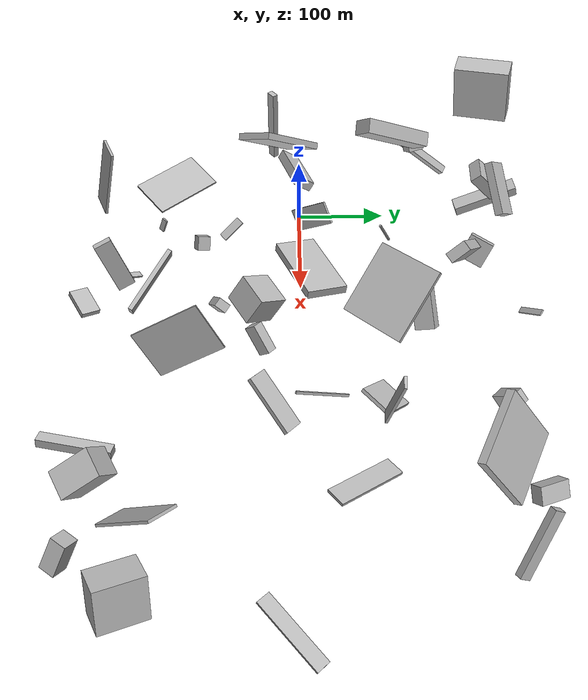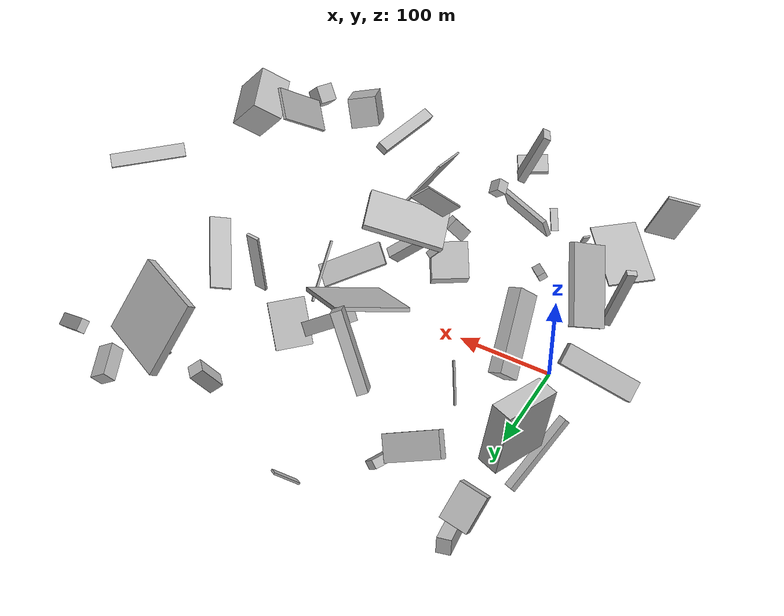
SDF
<sdf version="1.6">
 <world name="default">
  <scene>
   <sky><clouds><speed>12</speed></clouds></sky>
   <ambient>0.4 0.4 0.4 1</ambient>
   <background>0.7 0.7 0.7 1</background>
   <shadows>1</shadows>
  </scene>
  <gravity>0 0 -9.8066</gravity>
  <magnetic_field>6e-06 2.3e-05 -4.2e-05</magnetic_field>
  <physics default="0" name="default_physics" type="ode">
   <ode>
    <solver>
     <type>quick</type>
     <iters>10</iters>
     <sor>1.0</sor>
     <use_dynamic_moi_rescaling>0</use_dynamic_moi_rescaling>
    </solver>
    <constraints>
     <cfm>0</cfm>
     <erp>0.2</erp>
     <contact_max_correcting_vel>100</contact_max_correcting_vel>
     <contact_surface_layer>0.001</contact_surface_layer>
    </constraints>
   </ode>
   <max_step_size>0.004</max_step_size>
   <real_time_factor>1</real_time_factor>
   <real_time_update_rate>250</real_time_update_rate>
  </physics>
  <light name="sun" type="directional">
   <pose>0 0 10 0 0 0</pose>
   <diffuse>0.8 0.8 0.8 1</diffuse>
   <specular>0.2 0.2 0.2 1</specular>
   <attenuation>
    <range>1000</range>
    <constant>0.9</constant>
    <linear>0.01</linear>
    <quadratic>0.001</quadratic>
   </attenuation>
   <direction>-0.5 0.1 -0.9</direction>
  </light>
  <model name="building_1">
   <static>0</static>
   <pose>350.50297082280144 58.17039770913987 48.507383526005626 -0.39075200750457306 -0.26439517648714717 0.6787421857935552</pose>
   <link name="link">
    <gravity>0</gravity>
    <pose>0 0 1.5 0 0 0</pose>
    <collision name="collision"><geometry><box><size>22 80 3</size></box></geometry></collision>
    <visual name="visual">
     <cast_shadows>0</cast_shadows>
     <geometry><box><size>22 80 3</size></box></geometry>
     <material>
      <script>
       <uri>model://HANNAS_wall/materials/scripts</uri>
       <uri>model://HANNAS_wall/materials/textures</uri>
       <name>vrc/HANNAS_wall</name>
      </script>
     </material>
    </visual>
   </link>
  </model>
  <model name="building_2">
   <static>0</static>
   <pose>34.935973010350175 222.0811539032445 98.1418822432651 -2.3286987783133015 -0.4441374028061939 -2.9353144690963062</pose>
   <link name="link">
    <gravity>0</gravity>
    <pose>0 0 4.5 0 0 0</pose>
    <collision name="collision"><geometry><box><size>58 26 9</size></box></geometry></collision>
    <visual name="visual">
     <cast_shadows>0</cast_shadows>
     <geometry><box><size>58 26 9</size></box></geometry>
     <material>
      <script>
       <uri>model://HANNAS_wall/materials/scripts</uri>
       <uri>model://HANNAS_wall/materials/textures</uri>
       <name>vrc/HANNAS_wall</name>
      </script>
     </material>
    </visual>
   </link>
  </model>
  <model name="building_3">
   <static>0</static>
   <pose>442.9387197125823 -153.43686723599066 37.42368375265994 1.227489301293758 -0.6011895621450869 0.5592062495104995</pose>
   <link name="link">
    <gravity>0</gravity>
    <pose>0 0 26.0 0 0 0</pose>
    <collision name="collision"><geometry><box><size>36 49 52</size></box></geometry></collision>
    <visual name="visual">
     <cast_shadows>0</cast_shadows>
     <geometry><box><size>36 49 52</size></box></geometry>
     <material>
      <script>
       <uri>model://HANNAS_wall/materials/scripts</uri>
       <uri>model://HANNAS_wall/materials/textures</uri>
       <name>vrc/HANNAS_wall</name>
      </script>
     </material>
    </visual>
   </link>
  </model>
  <model name="building_4">
   <static>0</static>
   <pose>-11.279356948584365 220.50955503457527 26.143846809594532 2.8301337974087626 -0.06108503340415035 -2.9368011854052973</pose>
   <link name="link">
    <gravity>0</gravity>
    <pose>0 0 8.0 0 0 0</pose>
    <collision name="collision"><geometry><box><size>14 74 16</size></box></geometry></collision>
    <visual name="visual">
     <cast_shadows>0</cast_shadows>
     <geometry><box><size>14 74 16</size></box></geometry>
     <material>
      <script>
       <uri>model://HANNAS_wall/materials/scripts</uri>
       <uri>model://HANNAS_wall/materials/textures</uri>
       <name>vrc/HANNAS_wall</name>
      </script>
     </material>
    </visual>
   </link>
  </model>
  <model name="building_5">
   <static>0</static>
   <pose>8.07529333044753 -125.75930934392657 54.26874190508067 -1.502341470963277 -1.441987735107725 2.1930913305862303</pose>
   <link name="link">
    <gravity>0</gravity>
    <pose>0 0 24.0 0 0 0</pose>
    <collision name="collision"><geometry><box><size>2 77 48</size></box></geometry></collision>
    <visual name="visual">
     <cast_shadows>0</cast_shadows>
     <geometry><box><size>2 77 48</size></box></geometry>
     <material>
      <script>
       <uri>model://HANNAS_wall/materials/scripts</uri>
       <uri>model://HANNAS_wall/materials/textures</uri>
       <name>vrc/HANNAS_wall</name>
      </script>
     </material>
    </visual>
   </link>
  </model>
  <model name="building_6">
   <static>0</static>
   <pose>289.60090330277933 87.60225547387931 93.14024884661632 -1.8282703228616668 -1.426788419139157 1.7524705369977076</pose>
   <link name="link">
    <gravity>0</gravity>
    <pose>0 0 6.5 0 0 0</pose>
    <collision name="collision"><geometry><box><size>80 3 13</size></box></geometry></collision>
    <visual name="visual">
     <cast_shadows>0</cast_shadows>
     <geometry><box><size>80 3 13</size></box></geometry>
     <material>
      <script>
       <uri>model://HANNAS_wall/materials/scripts</uri>
       <uri>model://HANNAS_wall/materials/textures</uri>
       <name>vrc/HANNAS_wall</name>
      </script>
     </material>
    </visual>
   </link>
  </model>
  <model name="building_7">
   <static>0</static>
   <pose>333.19245200190664 200.8298852112778 90.77258459819674 2.2239853358123987 0.03112007084341543 -0.46146683710878283</pose>
   <link name="link">
    <gravity>0</gravity>
    <pose>0 0 4.5 0 0 0</pose>
    <collision name="collision"><geometry><box><size>80 80 9</size></box></geometry></collision>
    <visual name="visual">
     <cast_shadows>0</cast_shadows>
     <geometry><box><size>80 80 9</size></box></geometry>
     <material>
      <script>
       <uri>model://HANNAS_wall/materials/scripts</uri>
       <uri>model://HANNAS_wall/materials/textures</uri>
       <name>vrc/HANNAS_wall</name>
      </script>
     </material>
    </visual>
   </link>
  </model>
  <model name="building_8">
   <static>0</static>
   <pose>131.03912605089076 -0.8974243994562573 102.53958142245243 -0.9165984895371526 0.5173154835480206 -1.5684897720814142</pose>
   <link name="link">
    <gravity>0</gravity>
    <pose>0 0 3.5 0 0 0</pose>
    <collision name="collision"><geometry><box><size>6 14 7</size></box></geometry></collision>
    <visual name="visual">
     <cast_shadows>0</cast_shadows>
     <geometry><box><size>6 14 7</size></box></geometry>
     <material>
      <script>
       <uri>model://HANNAS_wall/materials/scripts</uri>
       <uri>model://HANNAS_wall/materials/textures</uri>
       <name>vrc/HANNAS_wall</name>
      </script>
     </material>
    </visual>
   </link>
  </model>
  <model name="building_9">
   <static>0</static>
   <pose>81.96770404740343 194.64954294147685 24.835378967524868 0.6903895822095849 -0.13781503160643552 -2.103997700546244</pose>
   <link name="link">
    <gravity>0</gravity>
    <pose>0 0 14.5 0 0 0</pose>
    <collision name="collision"><geometry><box><size>28 9 29</size></box></geometry></collision>
    <visual name="visual">
     <cast_shadows>0</cast_shadows>
     <geometry><box><size>28 9 29</size></box></geometry>
     <material>
      <script>
       <uri>model://HANNAS_wall/materials/scripts</uri>
       <uri>model://HANNAS_wall/materials/textures</uri>
       <name>vrc/HANNAS_wall</name>
      </script>
     </material>
    </visual>
   </link>
  </model>
  <model name="building_10">
   <static>0</static>
   <pose>145.83770533120727 -56.8697664776784 34.53183839047554 -0.011817912925682439 -0.6652415410147637 -1.0060672417075218</pose>
   <link name="link">
    <gravity>0</gravity>
    <pose>0 0 16.5 0 0 0</pose>
    <collision name="collision"><geometry><box><size>38 38 33</size></box></geometry></collision>
    <visual name="visual">
     <cast_shadows>0</cast_shadows>
     <geometry><box><size>38 38 33</size></box></geometry>
     <material>
      <script>
       <uri>model://HANNAS_wall/materials/scripts</uri>
       <uri>model://HANNAS_wall/materials/textures</uri>
       <name>vrc/HANNAS_wall</name>
      </script>
     </material>
    </visual>
   </link>
  </model>
  <model name="building_11">
   <static>0</static>
   <pose>249.66404402153717 85.74590948206163 21.254182634112365 0.03286482095077687 0.7482290085842461 2.350031494289465</pose>
   <link name="link">
    <gravity>0</gravity>
    <pose>0 0 2.0 0 0 0</pose>
    <collision name="collision"><geometry><box><size>49 38 4</size></box></geometry></collision>
    <visual name="visual">
     <cast_shadows>0</cast_shadows>
     <geometry><box><size>49 38 4</size></box></geometry>
     <material>
      <script>
       <uri>model://HANNAS_wall/materials/scripts</uri>
       <uri>model://HANNAS_wall/materials/textures</uri>
       <name>vrc/HANNAS_wall</name>
      </script>
     </material>
    </visual>
   </link>
  </model>
  <model name="building_12">
   <static>0</static>
   <pose>166.4791217969096 -10.589267816233878 145.85136416176618 2.3094364956519837 -1.168883627503902 2.7662518703282872</pose>
   <link name="link">
    <gravity>0</gravity>
    <pose>0 0 20.5 0 0 0</pose>
    <collision name="collision"><geometry><box><size>8 80 41</size></box></geometry></collision>
    <visual name="visual">
     <cast_shadows>0</cast_shadows>
     <geometry><box><size>8 80 41</size></box></geometry>
     <material>
      <script>
       <uri>model://HANNAS_wall/materials/scripts</uri>
       <uri>model://HANNAS_wall/materials/textures</uri>
       <name>vrc/HANNAS_wall</name>
      </script>
     </material>
    </visual>
   </link>
  </model>
  <model name="building_13">
   <static>0</static>
   <pose>59.30565886845567 -86.46359131994649 46.65317532502428 1.1191271020662945 -0.3856288757098133 -2.3017824709001156</pose>
   <link name="link">
    <gravity>0</gravity>
    <pose>0 0 13.5 0 0 0</pose>
    <collision name="collision"><geometry><box><size>9 6 27</size></box></geometry></collision>
    <visual name="visual">
     <cast_shadows>0</cast_shadows>
     <geometry><box><size>9 6 27</size></box></geometry>
     <material>
      <script>
       <uri>model://HANNAS_wall/materials/scripts</uri>
       <uri>model://HANNAS_wall/materials/textures</uri>
       <name>vrc/HANNAS_wall</name>
      </script>
     </material>
    </visual>
   </link>
  </model>
  <model name="building_14">
   <static>0</static>
   <pose>-53.06072537171579 0.11998093851280334 31.103999756446786 -2.4644259752314195 0.4639319686787377 -2.8840388852912193</pose>
   <link name="link">
    <gravity>0</gravity>
    <pose>0 0 5.5 0 0 0</pose>
    <collision name="collision"><geometry><box><size>80 22 11</size></box></geometry></collision>
    <visual name="visual">
     <cast_shadows>0</cast_shadows>
     <geometry><box><size>80 22 11</size></box></geometry>
     <material>
      <script>
       <uri>model://HANNAS_wall/materials/scripts</uri>
       <uri>model://HANNAS_wall/materials/textures</uri>
       <name>vrc/HANNAS_wall</name>
      </script>
     </material>
    </visual>
   </link>
  </model>
  <model name="building_15">
   <static>0</static>
   <pose>39.401687276485085 -153.6480174315411 40.88129536381123 1.5578873238611142 1.0792386032911099 -0.8364026169141002</pose>
   <link name="link">
    <gravity>0</gravity>
    <pose>0 0 3.5 0 0 0</pose>
    <collision name="collision"><geometry><box><size>15 2 7</size></box></geometry></collision>
    <visual name="visual">
     <cast_shadows>0</cast_shadows>
     <geometry><box><size>15 2 7</size></box></geometry>
     <material>
      <script>
       <uri>model://HANNAS_wall/materials/scripts</uri>
       <uri>model://HANNAS_wall/materials/textures</uri>
       <name>vrc/HANNAS_wall</name>
      </script>
     </material>
    </visual>
   </link>
  </model>
  <model name="building_16">
   <static>0</static>
   <pose>148.87247369194506 -85.24642658617323 58.351857901429476 1.899290207707333 0.6111786843357123 1.1304160435254038</pose>
   <link name="link">
    <gravity>0</gravity>
    <pose>0 0 5.0 0 0 0</pose>
    <collision name="collision"><geometry><box><size>14 25 10</size></box></geometry></collision>
    <visual name="visual">
     <cast_shadows>0</cast_shadows>
     <geometry><box><size>14 25 10</size></box></geometry>
     <material>
      <script>
       <uri>model://HANNAS_wall/materials/scripts</uri>
       <uri>model://HANNAS_wall/materials/textures</uri>
       <name>vrc/HANNAS_wall</name>
      </script>
     </material>
    </visual>
   </link>
  </model>
  <model name="building_17">
   <static>0</static>
   <pose>-22.830014647587042 131.07463456526142 104.3097926321667 -2.2794400417522955 0.09632861480738655 1.9724945895437747</pose>
   <link name="link">
    <gravity>0</gravity>
    <pose>0 0 7.0 0 0 0</pose>
    <collision name="collision"><geometry><box><size>18 14 14</size></box></geometry></collision>
    <visual name="visual">
     <cast_shadows>0</cast_shadows>
     <geometry><box><size>18 14 14</size></box></geometry>
     <material>
      <script>
       <uri>model://HANNAS_wall/materials/scripts</uri>
       <uri>model://HANNAS_wall/materials/textures</uri>
       <name>vrc/HANNAS_wall</name>
      </script>
     </material>
    </visual>
   </link>
  </model>
  <model name="building_18">
   <static>0</static>
   <pose>118.26197189880875 -4.871074675666669 161.52527388516648 -0.3401729578067967 0.6658831080028329 0.4731202722831249</pose>
   <link name="link">
    <gravity>0</gravity>
    <pose>0 0 26.0 0 0 0</pose>
    <collision name="collision"><geometry><box><size>21 2 52</size></box></geometry></collision>
    <visual name="visual">
     <cast_shadows>0</cast_shadows>
     <geometry><box><size>21 2 52</size></box></geometry>
     <material>
      <script>
       <uri>model://HANNAS_wall/materials/scripts</uri>
       <uri>model://HANNAS_wall/materials/textures</uri>
       <name>vrc/HANNAS_wall</name>
      </script>
     </material>
    </visual>
   </link>
  </model>
  <model name="building_19">
   <static>0</static>
   <pose>-8.139689634050505 132.63810397315396 127.99512364212495 -0.7611733226661885 0.7730946135929866 -2.2804940895721675</pose>
   <link name="link">
    <gravity>0</gravity>
    <pose>0 0 40.0 0 0 0</pose>
    <collision name="collision"><geometry><box><size>23 15 80</size></box></geometry></collision>
    <visual name="visual">
     <cast_shadows>0</cast_shadows>
     <geometry><box><size>23 15 80</size></box></geometry>
     <material>
      <script>
       <uri>model://HANNAS_wall/materials/scripts</uri>
       <uri>model://HANNAS_wall/materials/textures</uri>
       <name>vrc/HANNAS_wall</name>
      </script>
     </material>
    </visual>
   </link>
  </model>
  <model name="building_20">
   <static>0</static>
   <pose>132.68072546191095 -228.92686345447927 36.43264130597841 1.1823886189584243 0.019343316642549856 0.5338406596644553</pose>
   <link name="link">
    <gravity>0</gravity>
    <pose>0 0 10.5 0 0 0</pose>
    <collision name="collision"><geometry><box><size>33 6 21</size></box></geometry></collision>
    <visual name="visual">
     <cast_shadows>0</cast_shadows>
     <geometry><box><size>33 6 21</size></box></geometry>
     <material>
      <script>
       <uri>model://HANNAS_wall/materials/scripts</uri>
       <uri>model://HANNAS_wall/materials/textures</uri>
       <name>vrc/HANNAS_wall</name>
      </script>
     </material>
    </visual>
   </link>
  </model>
  <model name="building_21">
   <static>0</static>
   <pose>124.42092347324856 -205.21274389576354 88.06965426916284 -1.2485745664683479 1.1228956001452004 0.7755579180154316</pose>
   <link name="link">
    <gravity>0</gravity>
    <pose>0 0 9.5 0 0 0</pose>
    <collision name="collision"><geometry><box><size>59 8 19</size></box></geometry></collision>
    <visual name="visual">
     <cast_shadows>0</cast_shadows>
     <geometry><box><size>59 8 19</size></box></geometry>
     <material>
      <script>
       <uri>model://HANNAS_wall/materials/scripts</uri>
       <uri>model://HANNAS_wall/materials/textures</uri>
       <name>vrc/HANNAS_wall</name>
      </script>
     </material>
    </visual>
   </link>
  </model>
  <model name="building_22">
   <static>0</static>
   <pose>107.76275831798122 179.85801635260233 88.67227153615814 0.3713323023741173 -0.5961070354588742 1.9798307838517886</pose>
   <link name="link">
    <gravity>0</gravity>
    <pose>0 0 40.0 0 0 0</pose>
    <collision name="collision"><geometry><box><size>22 11 80</size></box></geometry></collision>
    <visual name="visual">
     <cast_shadows>0</cast_shadows>
     <geometry><box><size>22 11 80</size></box></geometry>
     <material>
      <script>
       <uri>model://HANNAS_wall/materials/scripts</uri>
       <uri>model://HANNAS_wall/materials/textures</uri>
       <name>vrc/HANNAS_wall</name>
      </script>
     </material>
    </visual>
   </link>
  </model>
  <model name="building_23">
   <static>0</static>
   <pose>91.80812102773852 -190.74364093541885 16.386127388546864 1.6923576853930609 -0.5909754298824728 -1.0190491425113408</pose>
   <link name="link">
    <gravity>0</gravity>
    <pose>0 0 4.0 0 0 0</pose>
    <collision name="collision"><geometry><box><size>25 2 8</size></box></geometry></collision>
    <visual name="visual">
     <cast_shadows>0</cast_shadows>
     <geometry><box><size>25 2 8</size></box></geometry>
     <material>
      <script>
       <uri>model://HANNAS_wall/materials/scripts</uri>
       <uri>model://HANNAS_wall/materials/textures</uri>
       <name>vrc/HANNAS_wall</name>
      </script>
     </material>
    </visual>
   </link>
  </model>
  <model name="building_24">
   <static>0</static>
   <pose>150.64967969744842 253.5241598511733 21.25047460079756 -1.245203126211023 -0.7690123175692722 0.7688120117996334</pose>
   <link name="link">
    <gravity>0</gravity>
    <pose>0 0 3.5 0 0 0</pose>
    <collision name="collision"><geometry><box><size>32 2 7</size></box></geometry></collision>
    <visual name="visual">
     <cast_shadows>0</cast_shadows>
     <geometry><box><size>32 2 7</size></box></geometry>
     <material>
      <script>
       <uri>model://HANNAS_wall/materials/scripts</uri>
       <uri>model://HANNAS_wall/materials/textures</uri>
       <name>vrc/HANNAS_wall</name>
      </script>
     </material>
    </visual>
   </link>
  </model>
  <model name="building_25">
   <static>0</static>
   <pose>-34.91921457755929 4.999261356074149 89.39334604408337 0.7046650498264249 -0.5403232358533274 1.040988877947983</pose>
   <link name="link">
    <gravity>0</gravity>
    <pose>0 0 40.0 0 0 0</pose>
    <collision name="collision"><geometry><box><size>44 7 80</size></box></geometry></collision>
    <visual name="visual">
     <cast_shadows>0</cast_shadows>
     <geometry><box><size>44 7 80</size></box></geometry>
     <material>
      <script>
       <uri>model://HANNAS_wall/materials/scripts</uri>
       <uri>model://HANNAS_wall/materials/textures</uri>
       <name>vrc/HANNAS_wall</name>
      </script>
     </material>
    </visual>
   </link>
  </model>
  <model name="building_26">
   <static>0</static>
   <pose>368.58740152695634 239.42295074594202 39.76844602188499 0.9300724048616207 -0.2674583963456604 -1.223194284604979</pose>
   <link name="link">
    <gravity>0</gravity>
    <pose>0 0 9.5 0 0 0</pose>
    <collision name="collision"><geometry><box><size>34 15 19</size></box></geometry></collision>
    <visual name="visual">
     <cast_shadows>0</cast_shadows>
     <geometry><box><size>34 15 19</size></box></geometry>
     <material>
      <script>
       <uri>model://HANNAS_wall/materials/scripts</uri>
       <uri>model://HANNAS_wall/materials/textures</uri>
       <name>vrc/HANNAS_wall</name>
      </script>
     </material>
    </visual>
   </link>
  </model>
  <model name="building_27">
   <static>0</static>
   <pose>176.24287310017206 114.84566956237988 90.64265376533984 -1.0048697610314357 0.6503003114088305 0.17424860700086292</pose>
   <link name="link">
    <gravity>0</gravity>
    <pose>0 0 10.5 0 0 0</pose>
    <collision name="collision"><geometry><box><size>50 14 21</size></box></geometry></collision>
    <visual name="visual">
     <cast_shadows>0</cast_shadows>
     <geometry><box><size>50 14 21</size></box></geometry>
     <material>
      <script>
       <uri>model://HANNAS_wall/materials/scripts</uri>
       <uri>model://HANNAS_wall/materials/textures</uri>
       <name>vrc/HANNAS_wall</name>
      </script>
     </material>
    </visual>
   </link>
  </model>
  <model name="building_28">
   <static>0</static>
   <pose>-40.65904467371578 -28.29344653572283 69.26537547157209 -0.1999407546858104 0.15763480157498475 2.1986769281393586</pose>
   <link name="link">
    <gravity>0</gravity>
    <pose>0 0 40.0 0 0 0</pose>
    <collision name="collision"><geometry><box><size>6 10 80</size></box></geometry></collision>
    <visual name="visual">
     <cast_shadows>0</cast_shadows>
     <geometry><box><size>6 10 80</size></box></geometry>
     <material>
      <script>
       <uri>model://HANNAS_wall/materials/scripts</uri>
       <uri>model://HANNAS_wall/materials/textures</uri>
       <name>vrc/HANNAS_wall</name>
      </script>
     </material>
    </visual>
   </link>
  </model>
  <model name="building_29">
   <static>0</static>
   <pose>112.90279577187326 -166.11600207836247 46.32172513276711 2.9405501385638346 -0.24387325161833415 -2.0867125557517365</pose>
   <link name="link">
    <gravity>0</gravity>
    <pose>0 0 9.5 0 0 0</pose>
    <collision name="collision"><geometry><box><size>5 80 19</size></box></geometry></collision>
    <visual name="visual">
     <cast_shadows>0</cast_shadows>
     <geometry><box><size>5 80 19</size></box></geometry>
     <material>
      <script>
       <uri>model://HANNAS_wall/materials/scripts</uri>
       <uri>model://HANNAS_wall/materials/textures</uri>
       <name>vrc/HANNAS_wall</name>
      </script>
     </material>
    </visual>
   </link>
  </model>
  <model name="building_30">
   <static>0</static>
   <pose>350.4743738842448 -209.40248465682 51.19305720000153 1.3728221799417548 0.4726311091835162 -1.1784182193126436</pose>
   <link name="link">
    <gravity>0</gravity>
    <pose>0 0 15.5 0 0 0</pose>
    <collision name="collision"><geometry><box><size>48 33 31</size></box></geometry></collision>
    <visual name="visual">
     <cast_shadows>0</cast_shadows>
     <geometry><box><size>48 33 31</size></box></geometry>
     <material>
      <script>
       <uri>model://HANNAS_wall/materials/scripts</uri>
       <uri>model://HANNAS_wall/materials/textures</uri>
       <name>vrc/HANNAS_wall</name>
      </script>
     </material>
    </visual>
   </link>
  </model>
  <model name="building_31">
   <static>0</static>
   <pose>299.32663638998304 -235.65573893849492 18.90813996973835 0.008657123770492854 0.4595824927210771 2.9495210197598314</pose>
   <link name="link">
    <gravity>0</gravity>
    <pose>0 0 5.0 0 0 0</pose>
    <collision name="collision"><geometry><box><size>13 80 10</size></box></geometry></collision>
    <visual name="visual">
     <cast_shadows>0</cast_shadows>
     <geometry><box><size>13 80 10</size></box></geometry>
     <material>
      <script>
       <uri>model://HANNAS_wall/materials/scripts</uri>
       <uri>model://HANNAS_wall/materials/textures</uri>
       <name>vrc/HANNAS_wall</name>
      </script>
     </material>
    </visual>
   </link>
  </model>
  <model name="building_32">
   <static>0</static>
   <pose>326.4298261328837 195.41703337872826 42.8029057558001 2.032577116073098 0.8198918499778565 -1.8202443459611786</pose>
   <link name="link">
    <gravity>0</gravity>
    <pose>0 0 1.0 0 0 0</pose>
    <collision name="collision"><geometry><box><size>26 2 2</size></box></geometry></collision>
    <visual name="visual">
     <cast_shadows>0</cast_shadows>
     <geometry><box><size>26 2 2</size></box></geometry>
     <material>
      <script>
       <uri>model://HANNAS_wall/materials/scripts</uri>
       <uri>model://HANNAS_wall/materials/textures</uri>
       <name>vrc/HANNAS_wall</name>
      </script>
     </material>
    </visual>
   </link>
  </model>
  <model name="building_33">
   <static>0</static>
   <pose>375.4109541452967 -148.3272829102602 62.10023669732553 0.7611430091227529 -0.7272027134734151 1.357924145267144</pose>
   <link name="link">
    <gravity>0</gravity>
    <pose>0 0 18.0 0 0 0</pose>
    <collision name="collision"><geometry><box><size>80 3 36</size></box></geometry></collision>
    <visual name="visual">
     <cast_shadows>0</cast_shadows>
     <geometry><box><size>80 3 36</size></box></geometry>
     <material>
      <script>
       <uri>model://HANNAS_wall/materials/scripts</uri>
       <uri>model://HANNAS_wall/materials/textures</uri>
       <name>vrc/HANNAS_wall</name>
      </script>
     </material>
    </visual>
   </link>
  </model>
  <model name="building_34">
   <static>0</static>
   <pose>-51.71605342744868 203.7404332370744 123.32114485416832 0.047481775129338766 0.15034689189975006 -1.8846796852362548</pose>
   <link name="link">
    <gravity>0</gravity>
    <pose>0 0 32.5 0 0 0</pose>
    <collision name="collision"><geometry><box><size>57 21 65</size></box></geometry></collision>
    <visual name="visual">
     <cast_shadows>0</cast_shadows>
     <geometry><box><size>57 21 65</size></box></geometry>
     <material>
      <script>
       <uri>model://HANNAS_wall/materials/scripts</uri>
       <uri>model://HANNAS_wall/materials/textures</uri>
       <name>vrc/HANNAS_wall</name>
      </script>
     </material>
    </visual>
   </link>
  </model>
  <model name="building_35">
   <static>0</static>
   <pose>259.0105560669628 203.64973048929954 38.95595619563792 -0.04326251370893096 0.5834609816912344 0.7278591761469989</pose>
   <link name="link">
    <gravity>0</gravity>
    <pose>0 0 16.0 0 0 0</pose>
    <collision name="collision"><geometry><box><size>15 14 32</size></box></geometry></collision>
    <visual name="visual">
     <cast_shadows>0</cast_shadows>
     <geometry><box><size>15 14 32</size></box></geometry>
     <material>
      <script>
       <uri>model://HANNAS_wall/materials/scripts</uri>
       <uri>model://HANNAS_wall/materials/textures</uri>
       <name>vrc/HANNAS_wall</name>
      </script>
     </material>
    </visual>
   </link>
  </model>
  <model name="building_36">
   <static>0</static>
   <pose>245.95161233804498 47.989102447293845 22.38866359067275 0.9384189206091953 -0.5289544775943866 0.5380518444660652</pose>
   <link name="link">
    <gravity>0</gravity>
    <pose>0 0 33.0 0 0 0</pose>
    <collision name="collision"><geometry><box><size>2 3 66</size></box></geometry></collision>
    <visual name="visual">
     <cast_shadows>0</cast_shadows>
     <geometry><box><size>2 3 66</size></box></geometry>
     <material>
      <script>
       <uri>model://HANNAS_wall/materials/scripts</uri>
       <uri>model://HANNAS_wall/materials/textures</uri>
       <name>vrc/HANNAS_wall</name>
      </script>
     </material>
    </visual>
   </link>
  </model>
  <model name="building_37">
   <static>0</static>
   <pose>178.57789890987104 -51.806904277744394 57.43957201546196 2.216316647853067 0.28583198154224754 2.37181884931135</pose>
   <link name="link">
    <gravity>0</gravity>
    <pose>0 0 16.5 0 0 0</pose>
    <collision name="collision"><geometry><box><size>11 17 33</size></box></geometry></collision>
    <visual name="visual">
     <cast_shadows>0</cast_shadows>
     <geometry><box><size>11 17 33</size></box></geometry>
     <material>
      <script>
       <uri>model://HANNAS_wall/materials/scripts</uri>
       <uri>model://HANNAS_wall/materials/textures</uri>
       <name>vrc/HANNAS_wall</name>
      </script>
     </material>
    </visual>
   </link>
  </model>
  <model name="building_38">
   <static>0</static>
   <pose>195.35451484599787 70.53568852556151 83.47617752558772 -0.5336174124392595 1.000357854056681 1.90670229181888</pose>
   <link name="link">
    <gravity>0</gravity>
    <pose>0 0 40.0 0 0 0</pose>
    <collision name="collision"><geometry><box><size>4 76 80</size></box></geometry></collision>
    <visual name="visual">
     <cast_shadows>0</cast_shadows>
     <geometry><box><size>4 76 80</size></box></geometry>
     <material>
      <script>
       <uri>model://HANNAS_wall/materials/scripts</uri>
       <uri>model://HANNAS_wall/materials/textures</uri>
       <name>vrc/HANNAS_wall</name>
      </script>
     </material>
    </visual>
   </link>
  </model>
  <model name="building_39">
   <static>0</static>
   <pose>219.6449911103635 -50.1291338476879 21.6977137743275 2.0179362391738547 0.5014116503324443 2.4320590508514215</pose>
   <link name="link">
    <gravity>0</gravity>
    <pose>0 0 35.0 0 0 0</pose>
    <collision name="collision"><geometry><box><size>25 5 70</size></box></geometry></collision>
    <visual name="visual">
     <cast_shadows>0</cast_shadows>
     <geometry><box><size>25 5 70</size></box></geometry>
     <material>
      <script>
       <uri>model://HANNAS_wall/materials/scripts</uri>
       <uri>model://HANNAS_wall/materials/textures</uri>
       <name>vrc/HANNAS_wall</name>
      </script>
     </material>
    </visual>
   </link>
  </model>
  <model name="building_40">
   <static>0</static>
   <pose>461.25389249965855 -41.397837490403134 68.65731918109262 -1.656229237785228 1.1719362617292284 -0.9265963612348324</pose>
   <link name="link">
    <gravity>0</gravity>
    <pose>0 0 40.0 0 0 0</pose>
    <collision name="collision"><geometry><box><size>2 16 80</size></box></geometry></collision>
    <visual name="visual">
     <cast_shadows>0</cast_shadows>
     <geometry><box><size>2 16 80</size></box></geometry>
     <material>
      <script>
       <uri>model://HANNAS_wall/materials/scripts</uri>
       <uri>model://HANNAS_wall/materials/textures</uri>
       <name>vrc/HANNAS_wall</name>
      </script>
     </material>
    </visual>
   </link>
  </model>
  <model name="building_41">
   <static>0</static>
   <pose>403.56543975694234 -246.30560037550947 28.703682544843797 -1.5911280377604893 -0.7775367418808221 -0.5999422252613285</pose>
   <link name="link">
    <gravity>0</gravity>
    <pose>0 0 9.0 0 0 0</pose>
    <collision name="collision"><geometry><box><size>20 37 18</size></box></geometry></collision>
    <visual name="visual">
     <cast_shadows>0</cast_shadows>
     <geometry><box><size>20 37 18</size></box></geometry>
     <material>
      <script>
       <uri>model://HANNAS_wall/materials/scripts</uri>
       <uri>model://HANNAS_wall/materials/textures</uri>
       <name>vrc/HANNAS_wall</name>
      </script>
     </material>
    </visual>
   </link>
  </model>
  <model name="building_42">
   <static>0</static>
   <pose>204.1598257333236 -127.77814571608067 73.74519762629642 0.9861730684032208 -0.48300995526466733 1.7556375057416258</pose>
   <link name="link">
    <gravity>0</gravity>
    <pose>0 0 1.0 0 0 0</pose>
    <collision name="collision"><geometry><box><size>80 56 2</size></box></geometry></collision>
    <visual name="visual">
     <cast_shadows>0</cast_shadows>
     <geometry><box><size>80 56 2</size></box></geometry>
     <material>
      <script>
       <uri>model://HANNAS_wall/materials/scripts</uri>
       <uri>model://HANNAS_wall/materials/textures</uri>
       <name>vrc/HANNAS_wall</name>
      </script>
     </material>
    </visual>
   </link>
  </model>
  <model name="building_43">
   <static>0</static>
   <pose>-22.54123470068489 205.96269775415576 57.29245499937938 -2.8965834226742166 0.7624702569230333 -1.457285609373767</pose>
   <link name="link">
    <gravity>0</gravity>
    <pose>0 0 19.0 0 0 0</pose>
    <collision name="collision"><geometry><box><size>14 29 38</size></box></geometry></collision>
    <visual name="visual">
     <cast_shadows>0</cast_shadows>
     <geometry><box><size>14 29 38</size></box></geometry>
     <material>
      <script>
       <uri>model://HANNAS_wall/materials/scripts</uri>
       <uri>model://HANNAS_wall/materials/textures</uri>
       <name>vrc/HANNAS_wall</name>
      </script>
     </material>
    </visual>
   </link>
  </model>
  <model name="building_44">
   <static>0</static>
   <pose>-47.766049016796536 139.12823236890787 55.06503724768129 -1.337258108014285 0.5811492646606846 1.2492530777427224</pose>
   <link name="link">
    <gravity>0</gravity>
    <pose>0 0 4.5 0 0 0</pose>
    <collision name="collision"><geometry><box><size>80 7 9</size></box></geometry></collision>
    <visual name="visual">
     <cast_shadows>0</cast_shadows>
     <geometry><box><size>80 7 9</size></box></geometry>
     <material>
      <script>
       <uri>model://HANNAS_wall/materials/scripts</uri>
       <uri>model://HANNAS_wall/materials/textures</uri>
       <name>vrc/HANNAS_wall</name>
      </script>
     </material>
    </visual>
   </link>
  </model>
  <model name="building_45">
   <static>0</static>
   <pose>-14.86047210022625 -220.8943380371482 48.271763044476735 -2.17018078319563 -1.1570715357145929 2.530731858496211</pose>
   <link name="link">
    <gravity>0</gravity>
    <pose>0 0 17.0 0 0 0</pose>
    <collision name="collision"><geometry><box><size>80 3 34</size></box></geometry></collision>
    <visual name="visual">
     <cast_shadows>0</cast_shadows>
     <geometry><box><size>80 3 34</size></box></geometry>
     <material>
      <script>
       <uri>model://HANNAS_wall/materials/scripts</uri>
       <uri>model://HANNAS_wall/materials/textures</uri>
       <name>vrc/HANNAS_wall</name>
      </script>
     </material>
    </visual>
   </link>
  </model>
  <model name="building_46">
   <static>0</static>
   <pose>411.90438020938626 216.063347127168 53.07845013357243 0.8097525361049217 0.5972871976140901 1.5766332221297144</pose>
   <link name="link">
    <gravity>0</gravity>
    <pose>0 0 4.0 0 0 0</pose>
    <collision name="collision"><geometry><box><size>13 75 8</size></box></geometry></collision>
    <visual name="visual">
     <cast_shadows>0</cast_shadows>
     <geometry><box><size>13 75 8</size></box></geometry>
     <material>
      <script>
       <uri>model://HANNAS_wall/materials/scripts</uri>
       <uri>model://HANNAS_wall/materials/textures</uri>
       <name>vrc/HANNAS_wall</name>
      </script>
     </material>
    </visual>
   </link>
  </model>
  <model name="building_47">
   <static>0</static>
   <pose>119.81894385843304 -101.94387574700018 114.81934260410225 -0.7465784843959401 0.39106706813569 1.8315773617300342</pose>
   <link name="link">
    <gravity>0</gravity>
    <pose>0 0 7.0 0 0 0</pose>
    <collision name="collision"><geometry><box><size>13 11 14</size></box></geometry></collision>
    <visual name="visual">
     <cast_shadows>0</cast_shadows>
     <geometry><box><size>13 11 14</size></box></geometry>
     <material>
      <script>
       <uri>model://HANNAS_wall/materials/scripts</uri>
       <uri>model://HANNAS_wall/materials/textures</uri>
       <name>vrc/HANNAS_wall</name>
      </script>
     </material>
    </visual>
   </link>
  </model>
  <model name="building_48">
   <static>0</static>
   <pose>51.97299346143321 103.18855271836367 26.265363606402296 0.35946186669853475 -0.14246138622267907 0.997285608248006</pose>
   <link name="link">
    <gravity>0</gravity>
    <pose>0 0 23.5 0 0 0</pose>
    <collision name="collision"><geometry><box><size>2 2 47</size></box></geometry></collision>
    <visual name="visual">
     <cast_shadows>0</cast_shadows>
     <geometry><box><size>2 2 47</size></box></geometry>
     <material>
      <script>
       <uri>model://HANNAS_wall/materials/scripts</uri>
       <uri>model://HANNAS_wall/materials/textures</uri>
       <name>vrc/HANNAS_wall</name>
      </script>
     </material>
    </visual>
   </link>
  </model>
 </world>
</sdf>
